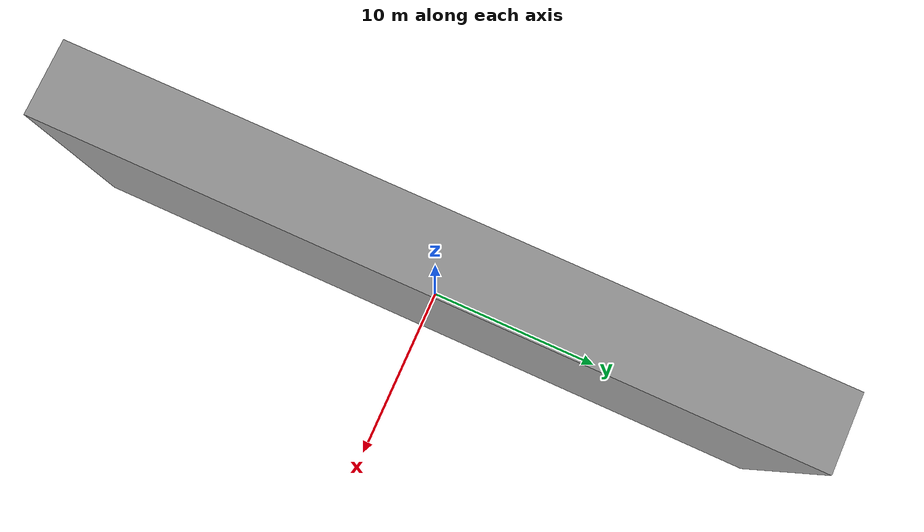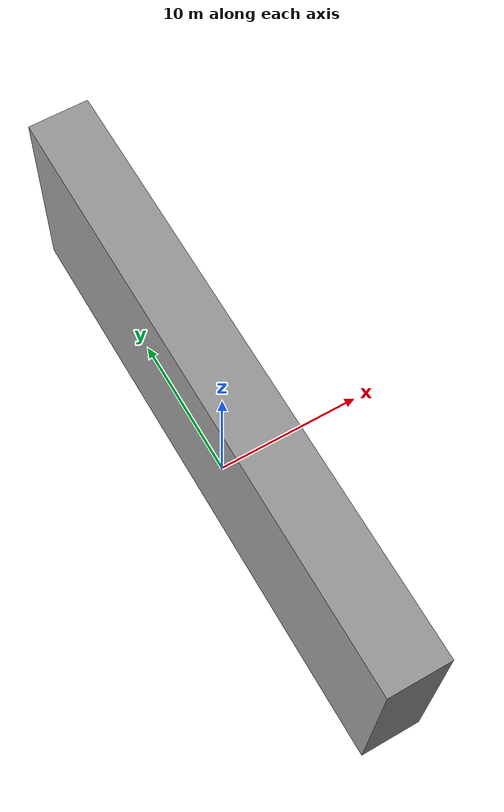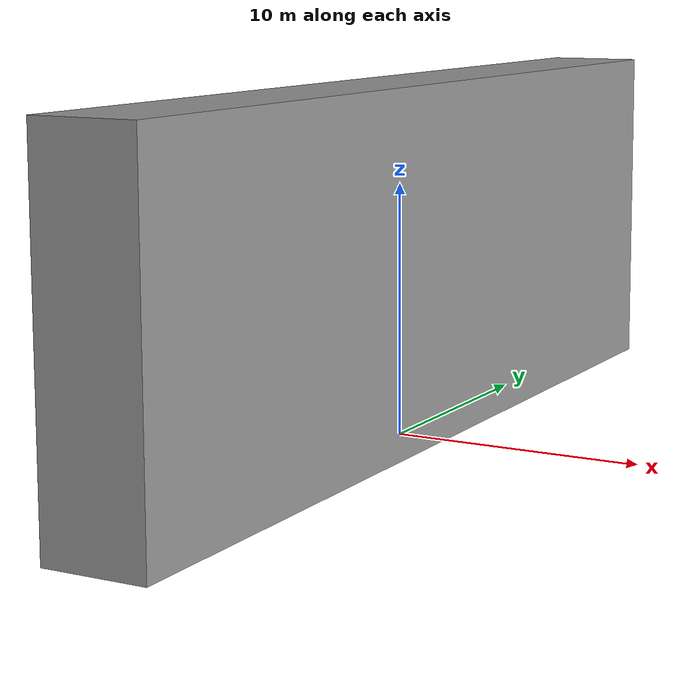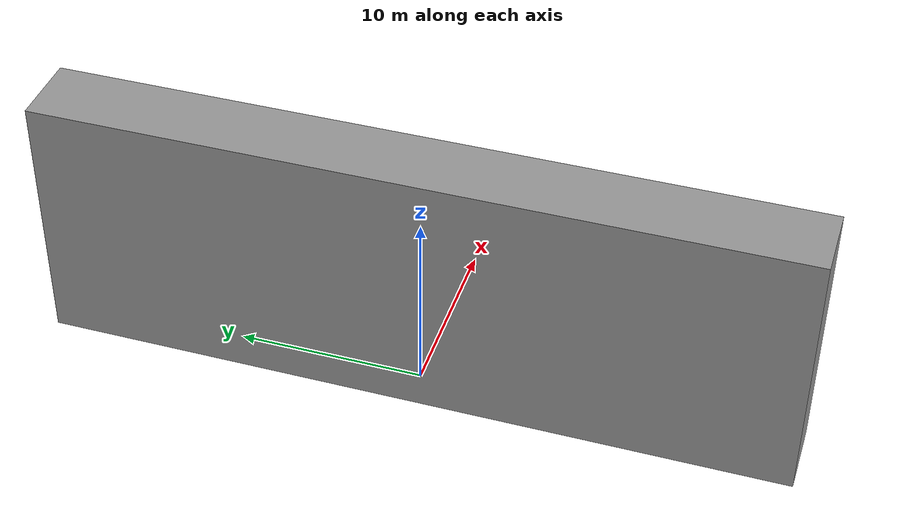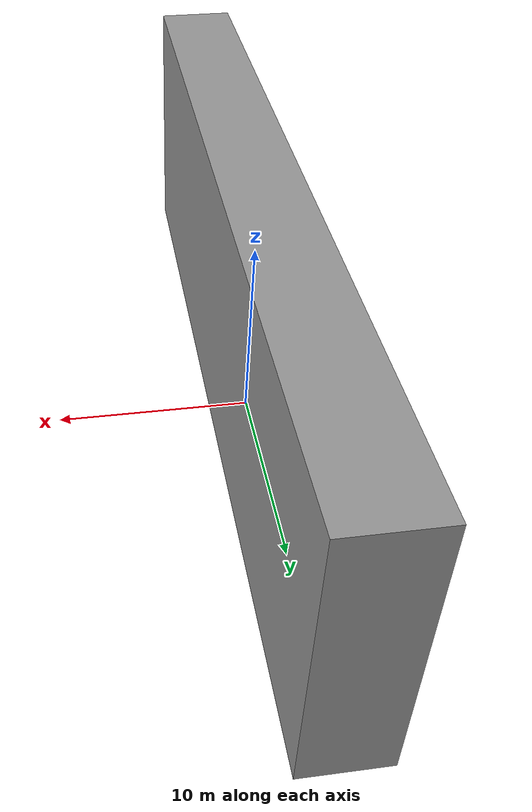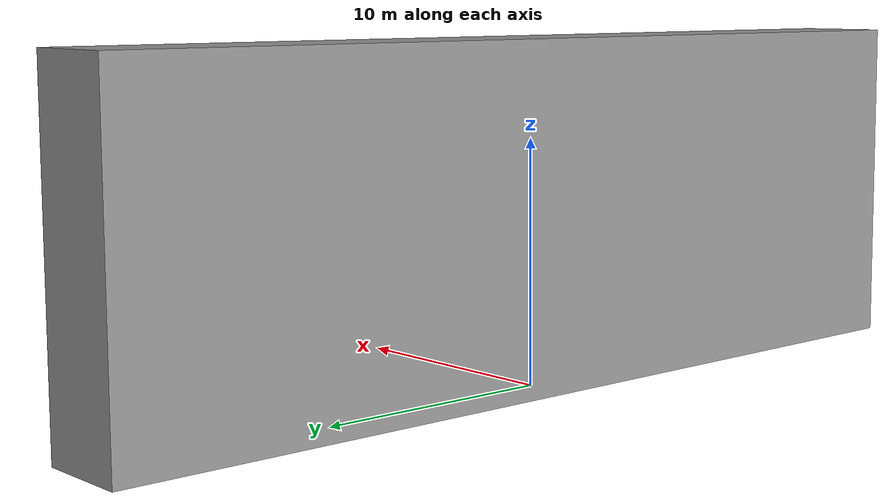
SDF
<?xml version="1.0" ?>
<sdf version="1.5">
  <model name="mbzirc_stand_14">
    <static>true</static>
    <link name="link">
      <pose>0 0 7.0 0 0 0</pose>
      <collision name="collision">
        <geometry>
          <box>
            <size>4 40 14</size>
          </box>
        </geometry>
      </collision>
      <visual name="visual">
        <cast_shadows>false</cast_shadows>
        <geometry>
          <box>
            <size>4 40 14</size>
          </box>
        </geometry>
        <material>
          <script>
            <name>Gazebo/Grey</name>
            <uri>file://media/materials/scripts/gazebo.material</uri>
          </script>
        </material>
      </visual>
    </link>
  </model>
</sdf>
